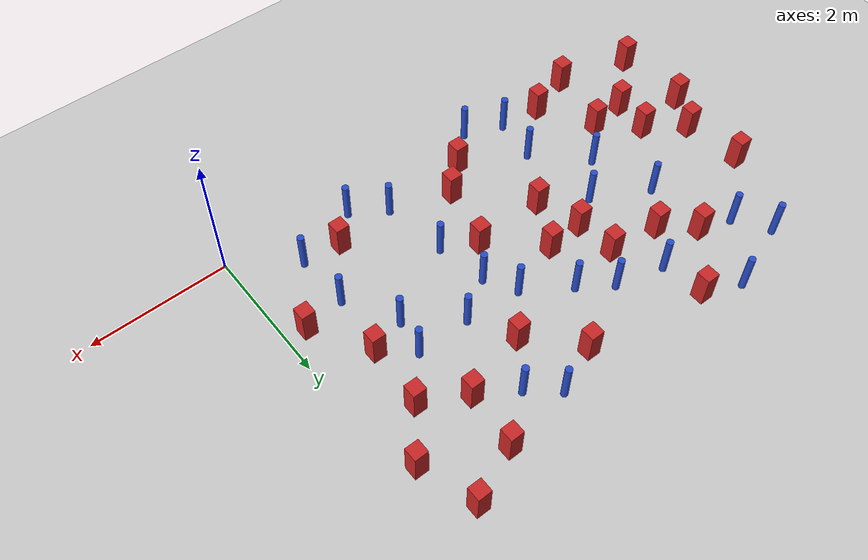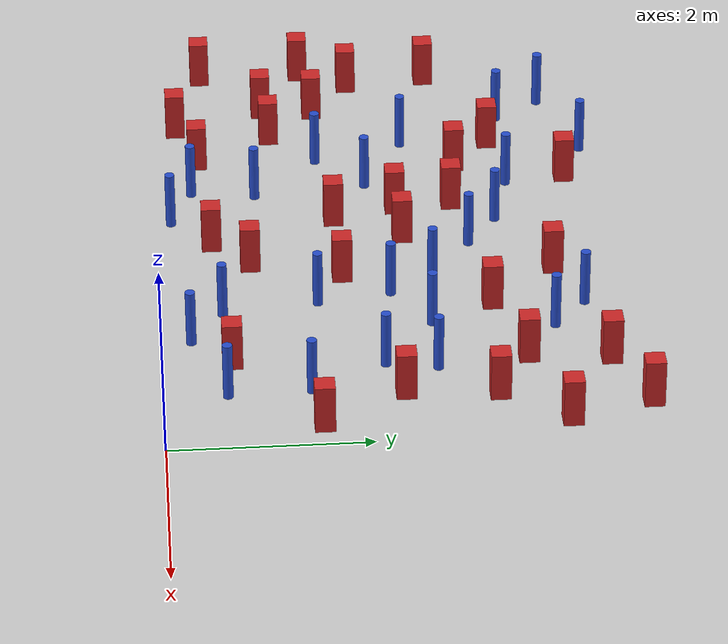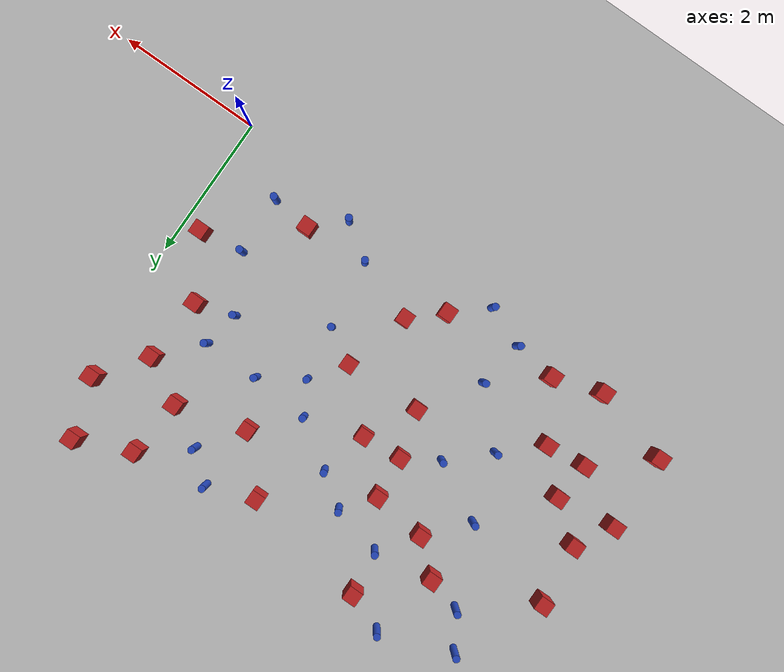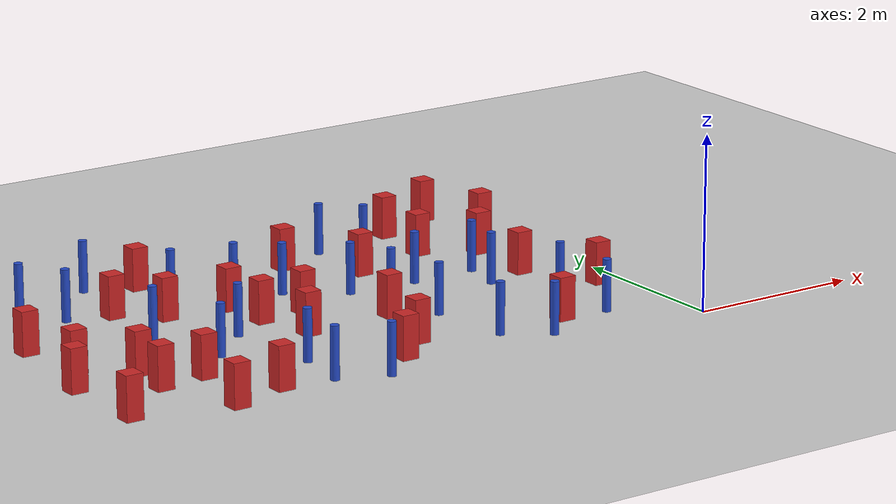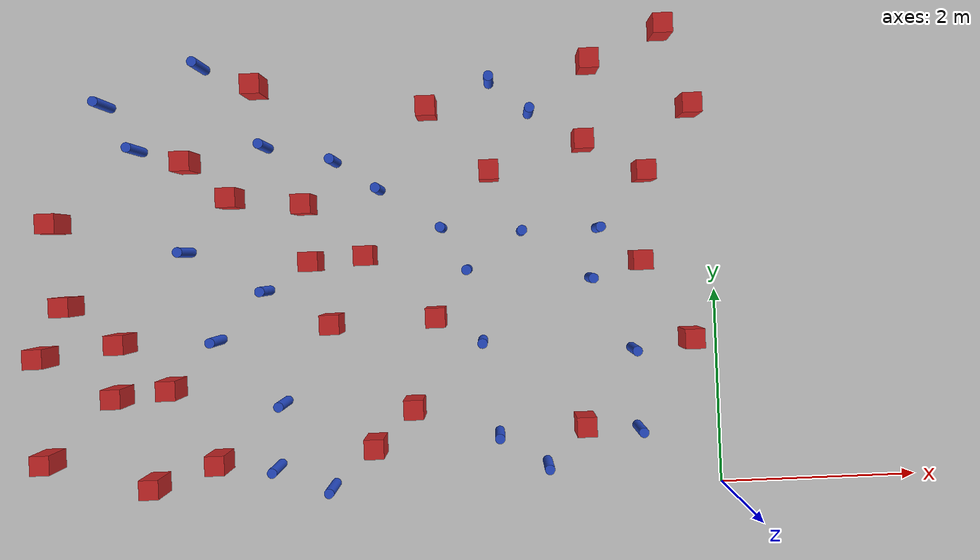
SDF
<sdf version="1.6">
 <world name="default">
  <model name="ground_plane">
   <static>1</static>
   <link name="link">
    <collision name="collision">
     <geometry><plane><normal>0 0 1</normal><size>100 100</size></plane></geometry>
     <surface><friction><ode><mu>100</mu><mu2>50</mu2></ode></friction></surface>
    </collision>
    <visual name="visual">
     <cast_shadows>0</cast_shadows>
     <geometry><plane><normal>0 0 1</normal><size>100 100</size></plane></geometry>
     <material>
      <ambient>1.0 1.0 1.0 1.0</ambient>
      <diffuse>0.8 0.8 0.8 1.0</diffuse>
      <specular>0.01 0.01 0.01 1.000000</specular>
     </material>
    </visual>
   </link>
  </model>
  <model name="pole_obstacle7">
   <static>true</static>
   <pose>-4.47552511647 1.02826375217 7.38925637345e-09 -8.47170692801e-08 1.24976765139e-08 -1.74513093014e-07</pose>
   <link name="link">
    <pose>0 0 0.3 0 -0 0</pose>
    <inertial>
     <mass>1</mass>
     <inertia><ixx>0.145833</ixx><ixy>0</ixy><ixz>0</ixz><iyy>0.145833</iyy><iyz>0</iyz><izz>0.125</izz></inertia>
    </inertial>
    <collision name="collision">
     <geometry><cylinder><radius>0.05</radius><length>.6</length></cylinder></geometry>
    </collision>
    <visual name="visual">
     <geometry><cylinder><radius>0.05</radius><length>.6</length></cylinder></geometry>
     <material>
      <script><name>Gazebo/Blue</name><uri>file://media/materials/scripts/gazebo.material</uri></script>
     </material>
    </visual>
   </link>
  </model>
  <model name="square_post_obstacle6">
   <static>true</static>
   <pose>-0.779457869081 2.34286586143 1.91545236811e-07 -7.35059704564e-06 1.12565212e-07 2.39332434364e-05</pose>
   <link name="link">
    <pose>0 0 0.25 0 -0 0</pose>
    <inertial>
     <mass>100</mass>
     <inertia>
      <ixx>0.166667</ixx>
      <ixy>0</ixy>
      <ixz>0</ixz>
      <iyy>0.166667</iyy>
      <iyz>0</iyz>
      <izz>0.166667</izz>
     </inertia>
    </inertial>
    <collision name="collision"><geometry><box><size>.2 .2 .5</size></box></geometry></collision>
    <visual name="visual">
     <geometry><box><size>.2 .2 .5</size></box></geometry>
     <material>
      <script><name>Gazebo/Red</name><uri>file://media/materials/scripts/gazebo.material</uri></script>
     </material>
    </visual>
   </link>
  </model>
  <model name="pole_obstacle15">
   <static>true</static>
   <pose>-1.29347158093 2.18036558145 7.38925637345e-09 -8.47170692799e-08 1.24976765053e-08 -1.74513093017e-07</pose>
   <link name="link">
    <pose>0 0 0.3 0 -0 0</pose>
    <inertial>
     <mass>1</mass>
     <inertia><ixx>0.145833</ixx><ixy>0</ixy><ixz>0</ixz><iyy>0.145833</iyy><iyz>0</iyz><izz>0.125</izz></inertia>
    </inertial>
    <collision name="collision">
     <geometry><cylinder><radius>0.05</radius><length>.6</length></cylinder></geometry>
    </collision>
    <visual name="visual">
     <geometry><cylinder><radius>0.05</radius><length>.6</length></cylinder></geometry>
     <material>
      <script><name>Gazebo/Blue</name><uri>file://media/materials/scripts/gazebo.material</uri></script>
     </material>
    </visual>
   </link>
  </model>
  <model name="square_post_obstacle16">
   <static>true</static>
   <pose>-3.55667821835 0.552505295943 1.91545236811e-07 -7.35059704564e-06 1.12565212e-07 2.39332434364e-05</pose>
   <link name="link">
    <pose>0 0 0.25 0 -0 0</pose>
    <inertial>
     <mass>100</mass>
     <inertia>
      <ixx>0.166667</ixx>
      <ixy>0</ixy>
      <ixz>0</ixz>
      <iyy>0.166667</iyy>
      <iyz>0</iyz>
      <izz>0.166667</izz>
     </inertia>
    </inertial>
    <collision name="collision"><geometry><box><size>.2 .2 .5</size></box></geometry></collision>
    <visual name="visual">
     <geometry><box><size>.2 .2 .5</size></box></geometry>
     <material>
      <script><name>Gazebo/Red</name><uri>file://media/materials/scripts/gazebo.material</uri></script>
     </material>
    </visual>
   </link>
  </model>
  <model name="pole_obstacle20">
   <static>true</static>
   <pose>-5.19675171322 4.49950263533 7.38925637345e-09 -8.47170692796e-08 1.24976764786e-08 -1.74513093032e-07</pose>
   <link name="link">
    <pose>0 0 0.3 0 -0 0</pose>
    <inertial>
     <mass>1</mass>
     <inertia><ixx>0.145833</ixx><ixy>0</ixy><ixz>0</ixz><iyy>0.145833</iyy><iyz>0</iyz><izz>0.125</izz></inertia>
    </inertial>
    <collision name="collision">
     <geometry><cylinder><radius>0.05</radius><length>.6</length></cylinder></geometry>
    </collision>
    <visual name="visual">
     <geometry><cylinder><radius>0.05</radius><length>.6</length></cylinder></geometry>
     <material>
      <script><name>Gazebo/Blue</name><uri>file://media/materials/scripts/gazebo.material</uri></script>
     </material>
    </visual>
   </link>
  </model>
  <model name="pole_obstacle26">
   <static>true</static>
   <pose>-5.4174638391 2.60945205125 7.38925637345e-09 -8.47170692798e-08 1.24976764937e-08 -1.74513093023e-07</pose>
   <link name="link">
    <pose>0 0 0.3 0 -0 0</pose>
    <inertial>
     <mass>1</mass>
     <inertia><ixx>0.145833</ixx><ixy>0</ixy><ixz>0</ixz><iyy>0.145833</iyy><iyz>0</iyz><izz>0.125</izz></inertia>
    </inertial>
    <collision name="collision">
     <geometry><cylinder><radius>0.05</radius><length>.6</length></cylinder></geometry>
    </collision>
    <visual name="visual">
     <geometry><cylinder><radius>0.05</radius><length>.6</length></cylinder></geometry>
     <material>
      <script><name>Gazebo/Blue</name><uri>file://media/materials/scripts/gazebo.material</uri></script>
     </material>
    </visual>
   </link>
  </model>
  <model name="pole_obstacle27">
   <static>true</static>
   <pose>-4.56566480997 0.37416328228 7.38925637345e-09 -8.47170692798e-08 1.24976765003e-08 -1.7451309302e-07</pose>
   <link name="link">
    <pose>0 0 0.3 0 -0 0</pose>
    <inertial>
     <mass>1</mass>
     <inertia><ixx>0.145833</ixx><ixy>0</ixy><ixz>0</ixz><iyy>0.145833</iyy><iyz>0</iyz><izz>0.125</izz></inertia>
    </inertial>
    <collision name="collision">
     <geometry><cylinder><radius>0.05</radius><length>.6</length></cylinder></geometry>
    </collision>
    <visual name="visual">
     <geometry><cylinder><radius>0.05</radius><length>.6</length></cylinder></geometry>
     <material>
      <script><name>Gazebo/Blue</name><uri>file://media/materials/scripts/gazebo.material</uri></script>
     </material>
    </visual>
   </link>
  </model>
  <model name="square_post_obstacle25">
   <static>true</static>
   <pose>-1.24236618436 4.39072266787 1.91545236811e-07 -7.35059704564e-06 1.12565212e-07 2.39332434364e-05</pose>
   <link name="link">
    <pose>0 0 0.25 0 -0 0</pose>
    <inertial>
     <mass>100</mass>
     <inertia>
      <ixx>0.166667</ixx>
      <ixy>0</ixy>
      <ixz>0</ixz>
      <iyy>0.166667</iyy>
      <iyz>0</iyz>
      <izz>0.166667</izz>
     </inertia>
    </inertial>
    <collision name="collision"><geometry><box><size>.2 .2 .5</size></box></geometry></collision>
    <visual name="visual">
     <geometry><box><size>.2 .2 .5</size></box></geometry>
     <material>
      <script><name>Gazebo/Red</name><uri>file://media/materials/scripts/gazebo.material</uri></script>
     </material>
    </visual>
   </link>
  </model>
  <model name="pole_obstacle32">
   <static>true</static>
   <pose>-3.87035606222 3.47852649039 7.38925637345e-09 -8.471706928e-08 1.24976765098e-08 -1.74513093016e-07</pose>
   <link name="link">
    <pose>0 0 0.3 0 -0 0</pose>
    <inertial>
     <mass>1</mass>
     <inertia><ixx>0.145833</ixx><ixy>0</ixy><ixz>0</ixz><iyy>0.145833</iyy><iyz>0</iyz><izz>0.125</izz></inertia>
    </inertial>
    <collision name="collision">
     <geometry><cylinder><radius>0.05</radius><length>.6</length></cylinder></geometry>
    </collision>
    <visual name="visual">
     <geometry><cylinder><radius>0.05</radius><length>.6</length></cylinder></geometry>
     <material>
      <script><name>Gazebo/Blue</name><uri>file://media/materials/scripts/gazebo.material</uri></script>
     </material>
    </visual>
   </link>
  </model>
  <model name="square_post_obstacle27">
   <static>true</static>
   <pose>-6.91373864437 0.527939856984 1.91545236811e-07 -7.35059704564e-06 1.12565212e-07 2.39332434364e-05</pose>
   <link name="link">
    <pose>0 0 0.25 0 -0 0</pose>
    <inertial>
     <mass>100</mass>
     <inertia>
      <ixx>0.166667</ixx>
      <ixy>0</ixy>
      <ixz>0</ixz>
      <iyy>0.166667</iyy>
      <iyz>0</iyz>
      <izz>0.166667</izz>
     </inertia>
    </inertial>
    <collision name="collision"><geometry><box><size>.2 .2 .5</size></box></geometry></collision>
    <visual name="visual">
     <geometry><box><size>.2 .2 .5</size></box></geometry>
     <material>
      <script><name>Gazebo/Red</name><uri>file://media/materials/scripts/gazebo.material</uri></script>
     </material>
    </visual>
   </link>
  </model>
  <model name="square_post_obstacle32">
   <static>true</static>
   <pose>-2.90508155995 3.98012649412 1.91545236811e-07 -7.35059704564e-06 1.12565212e-07 2.39332434364e-05</pose>
   <link name="link">
    <pose>0 0 0.25 0 -0 0</pose>
    <inertial>
     <mass>100</mass>
     <inertia>
      <ixx>0.166667</ixx>
      <ixy>0</ixy>
      <ixz>0</ixz>
      <iyy>0.166667</iyy>
      <iyz>0</iyz>
      <izz>0.166667</izz>
     </inertia>
    </inertial>
    <collision name="collision"><geometry><box><size>.2 .2 .5</size></box></geometry></collision>
    <visual name="visual">
     <geometry><box><size>.2 .2 .5</size></box></geometry>
     <material>
      <script><name>Gazebo/Red</name><uri>file://media/materials/scripts/gazebo.material</uri></script>
     </material>
    </visual>
   </link>
  </model>
  <model name="square_post_obstacle34">
   <static>true</static>
   <pose>-1.40975903618 0.686962443168 1.91545236811e-07 -7.35059704564e-06 1.12565212e-07 2.39332434364e-05</pose>
   <link name="link">
    <pose>0 0 0.25 0 -0 0</pose>
    <inertial>
     <mass>100</mass>
     <inertia>
      <ixx>0.166667</ixx>
      <ixy>0</ixy>
      <ixz>0</ixz>
      <iyy>0.166667</iyy>
      <iyz>0</iyz>
      <izz>0.166667</izz>
     </inertia>
    </inertial>
    <collision name="collision"><geometry><box><size>.2 .2 .5</size></box></geometry></collision>
    <visual name="visual">
     <geometry><box><size>.2 .2 .5</size></box></geometry>
     <material>
      <script><name>Gazebo/Red</name><uri>file://media/materials/scripts/gazebo.material</uri></script>
     </material>
    </visual>
   </link>
  </model>
  <model name="square_post_obstacle37">
   <static>true</static>
   <pose>-6.17593598702 1.16178303904 1.91545236811e-07 -7.35059704564e-06 1.12565212e-07 2.39332434364e-05</pose>
   <link name="link">
    <pose>0 0 0.25 0 -0 0</pose>
    <inertial>
     <mass>100</mass>
     <inertia>
      <ixx>0.166667</ixx>
      <ixy>0</ixy>
      <ixz>0</ixz>
      <iyy>0.166667</iyy>
      <iyz>0</iyz>
      <izz>0.166667</izz>
     </inertia>
    </inertial>
    <collision name="collision"><geometry><box><size>.2 .2 .5</size></box></geometry></collision>
    <visual name="visual">
     <geometry><box><size>.2 .2 .5</size></box></geometry>
     <material>
      <script><name>Gazebo/Red</name><uri>file://media/materials/scripts/gazebo.material</uri></script>
     </material>
    </visual>
   </link>
  </model>
  <model name="pole_obstacle50">
   <static>true</static>
   <pose>-3.42618506502 3.17109421138 7.38925637345e-09 -8.47170692798e-08 1.24976764939e-08 -1.74513093025e-07</pose>
   <link name="link">
    <pose>0 0 0.3 0 -0 0</pose>
    <inertial>
     <mass>1</mass>
     <inertia><ixx>0.145833</ixx><ixy>0</ixy><ixz>0</ixz><iyy>0.145833</iyy><iyz>0</iyz><izz>0.125</izz></inertia>
    </inertial>
    <collision name="collision">
     <geometry><cylinder><radius>0.05</radius><length>.6</length></cylinder></geometry>
    </collision>
    <visual name="visual">
     <geometry><cylinder><radius>0.05</radius><length>.6</length></cylinder></geometry>
     <material>
      <script><name>Gazebo/Blue</name><uri>file://media/materials/scripts/gazebo.material</uri></script>
     </material>
    </visual>
   </link>
  </model>
  <model name="pole_obstacle53">
   <static>true</static>
   <pose>-0.885758236064 1.43796768044 7.38925637345e-09 -8.47170692799e-08 1.24976765033e-08 -1.7451309302e-07</pose>
   <link name="link">
    <pose>0 0 0.3 0 -0 0</pose>
    <inertial>
     <mass>1</mass>
     <inertia><ixx>0.145833</ixx><ixy>0</ixy><ixz>0</ixz><iyy>0.145833</iyy><iyz>0</iyz><izz>0.125</izz></inertia>
    </inertial>
    <collision name="collision">
     <geometry><cylinder><radius>0.05</radius><length>.6</length></cylinder></geometry>
    </collision>
    <visual name="visual">
     <geometry><cylinder><radius>0.05</radius><length>.6</length></cylinder></geometry>
     <material>
      <script><name>Gazebo/Blue</name><uri>file://media/materials/scripts/gazebo.material</uri></script>
     </material>
    </visual>
   </link>
  </model>
  <model name="square_post_obstacle43">
   <static>true</static>
   <pose>-6.12449215025 1.70416959982 1.91545236811e-07 -7.35059704564e-06 1.12565212e-07 2.39332434364e-05</pose>
   <link name="link">
    <pose>0 0 0.25 0 -0 0</pose>
    <inertial>
     <mass>100</mass>
     <inertia>
      <ixx>0.166667</ixx>
      <ixy>0</ixy>
      <ixz>0</ixz>
      <iyy>0.166667</iyy>
      <iyz>0</iyz>
      <izz>0.166667</izz>
     </inertia>
    </inertial>
    <collision name="collision"><geometry><box><size>.2 .2 .5</size></box></geometry></collision>
    <visual name="visual">
     <geometry><box><size>.2 .2 .5</size></box></geometry>
     <material>
      <script><name>Gazebo/Red</name><uri>file://media/materials/scripts/gazebo.material</uri></script>
     </material>
    </visual>
   </link>
  </model>
  <model name="square_post_obstacle46">
   <static>true</static>
   <pose>-3.95458299181 1.81921405457 1.91545236811e-07 -7.35059704564e-06 1.12565212e-07 2.39332434364e-05</pose>
   <link name="link">
    <pose>0 0 0.25 0 -0 0</pose>
    <inertial>
     <mass>100</mass>
     <inertia>
      <ixx>0.166667</ixx>
      <ixy>0</ixy>
      <ixz>0</ixz>
      <iyy>0.166667</iyy>
      <iyz>0</iyz>
      <izz>0.166667</izz>
     </inertia>
    </inertial>
    <collision name="collision"><geometry><box><size>.2 .2 .5</size></box></geometry></collision>
    <visual name="visual">
     <geometry><box><size>.2 .2 .5</size></box></geometry>
     <material>
      <script><name>Gazebo/Red</name><uri>file://media/materials/scripts/gazebo.material</uri></script>
     </material>
    </visual>
   </link>
  </model>
  <model name="pole_obstacle62">
   <static>true</static>
   <pose>-1.86199265198 3.90369243995 7.38925637345e-09 -8.47170692799e-08 1.24976765053e-08 -1.74513093017e-07</pose>
   <link name="link">
    <pose>0 0 0.3 0 -0 0</pose>
    <inertial>
     <mass>1</mass>
     <inertia><ixx>0.145833</ixx><ixy>0</ixy><ixz>0</ixz><iyy>0.145833</iyy><iyz>0</iyz><izz>0.125</izz></inertia>
    </inertial>
    <collision name="collision">
     <geometry><cylinder><radius>0.05</radius><length>.6</length></cylinder></geometry>
    </collision>
    <visual name="visual">
     <geometry><cylinder><radius>0.05</radius><length>.6</length></cylinder></geometry>
     <material>
      <script><name>Gazebo/Blue</name><uri>file://media/materials/scripts/gazebo.material</uri></script>
     </material>
    </visual>
   </link>
  </model>
  <model name="square_post_obstacle50">
   <static>true</static>
   <pose>-6.65897586266 2.10480446351 1.91545236811e-07 -7.35059704564e-06 1.12565212e-07 2.39332434364e-05</pose>
   <link name="link">
    <pose>0 0 0.25 0 -0 0</pose>
    <inertial>
     <mass>100</mass>
     <inertia>
      <ixx>0.166667</ixx>
      <ixy>0</ixy>
      <ixz>0</ixz>
      <iyy>0.166667</iyy>
      <iyz>0</iyz>
      <izz>0.166667</izz>
     </inertia>
    </inertial>
    <collision name="collision"><geometry><box><size>.2 .2 .5</size></box></geometry></collision>
    <visual name="visual">
     <geometry><box><size>.2 .2 .5</size></box></geometry>
     <material>
      <script><name>Gazebo/Red</name><uri>file://media/materials/scripts/gazebo.material</uri></script>
     </material>
    </visual>
   </link>
  </model>
  <model name="square_post_obstacle53">
   <static>true</static>
   <pose>-5.83012517689 0.239624018968 1.91545236811e-07 -7.35059704564e-06 1.12565212e-07 2.39332434364e-05</pose>
   <link name="link">
    <pose>0 0 0.25 0 -0 0</pose>
    <inertial>
     <mass>100</mass>
     <inertia>
      <ixx>0.166667</ixx>
      <ixy>0</ixy>
      <ixz>0</ixz>
      <iyy>0.166667</iyy>
      <iyz>0</iyz>
      <izz>0.166667</izz>
     </inertia>
    </inertial>
    <collision name="collision"><geometry><box><size>.2 .2 .5</size></box></geometry></collision>
    <visual name="visual">
     <geometry><box><size>.2 .2 .5</size></box></geometry>
     <material>
      <script><name>Gazebo/Red</name><uri>file://media/materials/scripts/gazebo.material</uri></script>
     </material>
    </visual>
   </link>
  </model>
  <model name="square_post_obstacle54">
   <static>true</static>
   <pose>-5.62134615115 1.22285496758 1.91545236811e-07 -7.35059704564e-06 1.12565212e-07 2.39332434364e-05</pose>
   <link name="link">
    <pose>0 0 0.25 0 -0 0</pose>
    <inertial>
     <mass>100</mass>
     <inertia>
      <ixx>0.166667</ixx>
      <ixy>0</ixy>
      <ixz>0</ixz>
      <iyy>0.166667</iyy>
      <iyz>0</iyz>
      <izz>0.166667</izz>
     </inertia>
    </inertial>
    <collision name="collision"><geometry><box><size>.2 .2 .5</size></box></geometry></collision>
    <visual name="visual">
     <geometry><box><size>.2 .2 .5</size></box></geometry>
     <material>
      <script><name>Gazebo/Red</name><uri>file://media/materials/scripts/gazebo.material</uri></script>
     </material>
    </visual>
   </link>
  </model>
  <model name="square_post_obstacle64">
   <static>true</static>
   <pose>-4.14286515511 2.46294975578 1.91545236811e-07 -7.35059704564e-06 1.12565212e-07 2.39332434364e-05</pose>
   <link name="link">
    <pose>0 0 0.25 0 -0 0</pose>
    <inertial>
     <mass>100</mass>
     <inertia>
      <ixx>0.166667</ixx>
      <ixy>0</ixy>
      <ixz>0</ixz>
      <iyy>0.166667</iyy>
      <iyz>0</iyz>
      <izz>0.166667</izz>
     </inertia>
    </inertial>
    <collision name="collision"><geometry><box><size>.2 .2 .5</size></box></geometry></collision>
    <visual name="visual">
     <geometry><box><size>.2 .2 .5</size></box></geometry>
     <material>
      <script><name>Gazebo/Red</name><uri>file://media/materials/scripts/gazebo.material</uri></script>
     </material>
    </visual>
   </link>
  </model>
  <model name="pole_obstacle80">
   <static>true</static>
   <pose>-1.80364807686 0.295900043256 7.38925637345e-09 -8.47170692799e-08 1.2497676507e-08 -1.74513093018e-07</pose>
   <link name="link">
    <pose>0 0 0.3 0 -0 0</pose>
    <inertial>
     <mass>1</mass>
     <inertia><ixx>0.145833</ixx><ixy>0</ixy><ixz>0</ixz><iyy>0.145833</iyy><iyz>0</iyz><izz>0.125</izz></inertia>
    </inertial>
    <collision name="collision">
     <geometry><cylinder><radius>0.05</radius><length>.6</length></cylinder></geometry>
    </collision>
    <visual name="visual">
     <geometry><cylinder><radius>0.05</radius><length>.6</length></cylinder></geometry>
     <material>
      <script><name>Gazebo/Blue</name><uri>file://media/materials/scripts/gazebo.material</uri></script>
     </material>
    </visual>
   </link>
  </model>
  <model name="square_post_obstacle78">
   <static>true</static>
   <pose>-4.94384376058 3.1409705075 1.91545236811e-07 -7.35059704564e-06 1.12565212e-07 2.39332434364e-05</pose>
   <link name="link">
    <pose>0 0 0.25 0 -0 0</pose>
    <inertial>
     <mass>100</mass>
     <inertia>
      <ixx>0.166667</ixx>
      <ixy>0</ixy>
      <ixz>0</ixz>
      <iyy>0.166667</iyy>
      <iyz>0</iyz>
      <izz>0.166667</izz>
     </inertia>
    </inertial>
    <collision name="collision"><geometry><box><size>.2 .2 .5</size></box></geometry></collision>
    <visual name="visual">
     <geometry><box><size>.2 .2 .5</size></box></geometry>
     <material>
      <script><name>Gazebo/Red</name><uri>file://media/materials/scripts/gazebo.material</uri></script>
     </material>
    </visual>
   </link>
  </model>
  <model name="pole_obstacle103">
   <static>true</static>
   <pose>-1.98371619093 2.68836493172 7.38925637345e-09 -8.471706928e-08 1.24976765192e-08 -1.7451309301e-07</pose>
   <link name="link">
    <pose>0 0 0.3 0 -0 0</pose>
    <inertial>
     <mass>1</mass>
     <inertia><ixx>0.145833</ixx><ixy>0</ixy><ixz>0</ixz><iyy>0.145833</iyy><iyz>0</iyz><izz>0.125</izz></inertia>
    </inertial>
    <collision name="collision">
     <geometry><cylinder><radius>0.05</radius><length>.6</length></cylinder></geometry>
    </collision>
    <visual name="visual">
     <geometry><cylinder><radius>0.05</radius><length>.6</length></cylinder></geometry>
     <material>
      <script><name>Gazebo/Blue</name><uri>file://media/materials/scripts/gazebo.material</uri></script>
     </material>
    </visual>
   </link>
  </model>
  <model name="square_post_obstacle101">
   <static>true</static>
   <pose>-1.32400818551 3.5850652676 1.91545236811e-07 -7.35059704564e-06 1.12565212e-07 2.39332434364e-05</pose>
   <link name="link">
    <pose>0 0 0.25 0 -0 0</pose>
    <inertial>
     <mass>100</mass>
     <inertia>
      <ixx>0.166667</ixx>
      <ixy>0</ixy>
      <ixz>0</ixz>
      <iyy>0.166667</iyy>
      <iyz>0</iyz>
      <izz>0.166667</izz>
     </inertia>
    </inertial>
    <collision name="collision"><geometry><box><size>.2 .2 .5</size></box></geometry></collision>
    <visual name="visual">
     <geometry><box><size>.2 .2 .5</size></box></geometry>
     <material>
      <script><name>Gazebo/Red</name><uri>file://media/materials/scripts/gazebo.material</uri></script>
     </material>
    </visual>
   </link>
  </model>
  <model name="square_post_obstacle109">
   <static>true</static>
   <pose>-2.2924513308 3.31349529404 1.91545236811e-07 -7.35059704564e-06 1.12565212e-07 2.39332434364e-05</pose>
   <link name="link">
    <pose>0 0 0.25 0 -0 0</pose>
    <inertial>
     <mass>100</mass>
     <inertia>
      <ixx>0.166667</ixx>
      <ixy>0</ixy>
      <ixz>0</ixz>
      <iyy>0.166667</iyy>
      <iyz>0</iyz>
      <izz>0.166667</izz>
     </inertia>
    </inertial>
    <collision name="collision"><geometry><box><size>.2 .2 .5</size></box></geometry></collision>
    <visual name="visual">
     <geometry><box><size>.2 .2 .5</size></box></geometry>
     <material>
      <script><name>Gazebo/Red</name><uri>file://media/materials/scripts/gazebo.material</uri></script>
     </material>
    </visual>
   </link>
  </model>
  <model name="square_post_obstacle117">
   <static>true</static>
   <pose>-4.65355472396 4.2718973122 1.91545236811e-07 -7.35059704564e-06 1.12565212e-07 2.39332434364e-05</pose>
   <link name="link">
    <pose>0 0 0.25 0 -0 0</pose>
    <inertial>
     <mass>100</mass>
     <inertia>
      <ixx>0.166667</ixx>
      <ixy>0</ixy>
      <ixz>0</ixz>
      <iyy>0.166667</iyy>
      <iyz>0</iyz>
      <izz>0.166667</izz>
     </inertia>
    </inertial>
    <collision name="collision"><geometry><box><size>.2 .2 .5</size></box></geometry></collision>
    <visual name="visual">
     <geometry><box><size>.2 .2 .5</size></box></geometry>
     <material>
      <script><name>Gazebo/Red</name><uri>file://media/materials/scripts/gazebo.material</uri></script>
     </material>
    </visual>
   </link>
  </model>
  <model name="square_post_obstacle119">
   <static>true</static>
   <pose>-0.225609458666 3.90076886565 1.91545236811e-07 -7.35059704564e-06 1.12565212e-07 2.39332434364e-05</pose>
   <link name="link">
    <pose>0 0 0.25 0 -0 0</pose>
    <inertial>
     <mass>100</mass>
     <inertia>
      <ixx>0.166667</ixx>
      <ixy>0</ixy>
      <ixz>0</ixz>
      <iyy>0.166667</iyy>
      <iyz>0</iyz>
      <izz>0.166667</izz>
     </inertia>
    </inertial>
    <collision name="collision"><geometry><box><size>.2 .2 .5</size></box></geometry></collision>
    <visual name="visual">
     <geometry><box><size>.2 .2 .5</size></box></geometry>
     <material>
      <script><name>Gazebo/Red</name><uri>file://media/materials/scripts/gazebo.material</uri></script>
     </material>
    </visual>
   </link>
  </model>
  <model name="pole_obstacle122">
   <static>true</static>
   <pose>-4.61668513418 2.18182412368 7.38925637345e-09 -8.47170692798e-08 1.24976764937e-08 -1.74513093023e-07</pose>
   <link name="link">
    <pose>0 0 0.3 0 -0 0</pose>
    <inertial>
     <mass>1</mass>
     <inertia><ixx>0.145833</ixx><ixy>0</ixy><ixz>0</ixz><iyy>0.145833</iyy><iyz>0</iyz><izz>0.125</izz></inertia>
    </inertial>
    <collision name="collision">
     <geometry><cylinder><radius>0.05</radius><length>.6</length></cylinder></geometry>
    </collision>
    <visual name="visual">
     <geometry><cylinder><radius>0.05</radius><length>.6</length></cylinder></geometry>
     <material>
      <script><name>Gazebo/Blue</name><uri>file://media/materials/scripts/gazebo.material</uri></script>
     </material>
    </visual>
   </link>
  </model>
  <model name="square_post_obstacle123">
   <static>true</static>
   <pose>-0.291770926339 1.52798730163 1.91545236811e-07 -7.35059704564e-06 1.12565212e-07 2.39332434364e-05</pose>
   <link name="link">
    <pose>0 0 0.25 0 -0 0</pose>
    <inertial>
     <mass>100</mass>
     <inertia>
      <ixx>0.166667</ixx>
      <ixy>0</ixy>
      <ixz>0</ixz>
      <iyy>0.166667</iyy>
      <iyz>0</iyz>
      <izz>0.166667</izz>
     </inertia>
    </inertial>
    <collision name="collision"><geometry><box><size>.2 .2 .5</size></box></geometry></collision>
    <visual name="visual">
     <geometry><box><size>.2 .2 .5</size></box></geometry>
     <material>
      <script><name>Gazebo/Red</name><uri>file://media/materials/scripts/gazebo.material</uri></script>
     </material>
    </visual>
   </link>
  </model>
  <model name="pole_obstacle131">
   <static>true</static>
   <pose>-2.42211159376 1.57659329963 7.38925637345e-09 -8.471706928e-08 1.24976765152e-08 -1.74513093012e-07</pose>
   <link name="link">
    <pose>0 0 0.3 0 -0 0</pose>
    <inertial>
     <mass>1</mass>
     <inertia><ixx>0.145833</ixx><ixy>0</ixy><ixz>0</ixz><iyy>0.145833</iyy><iyz>0</iyz><izz>0.125</izz></inertia>
    </inertial>
    <collision name="collision">
     <geometry><cylinder><radius>0.05</radius><length>.6</length></cylinder></geometry>
    </collision>
    <visual name="visual">
     <geometry><cylinder><radius>0.05</radius><length>.6</length></cylinder></geometry>
     <material>
      <script><name>Gazebo/Blue</name><uri>file://media/materials/scripts/gazebo.material</uri></script>
     </material>
    </visual>
   </link>
  </model>
  <model name="pole_obstacle135">
   <static>true</static>
   <pose>-5.8815861731 3.67293108532 7.38925637345e-09 -8.47170692798e-08 1.24976764937e-08 -1.74513093023e-07</pose>
   <link name="link">
    <pose>0 0 0.3 0 -0 0</pose>
    <inertial>
     <mass>1</mass>
     <inertia><ixx>0.145833</ixx><ixy>0</ixy><ixz>0</ixz><iyy>0.145833</iyy><iyz>0</iyz><izz>0.125</izz></inertia>
    </inertial>
    <collision name="collision">
     <geometry><cylinder><radius>0.05</radius><length>.6</length></cylinder></geometry>
    </collision>
    <visual name="visual">
     <geometry><cylinder><radius>0.05</radius><length>.6</length></cylinder></geometry>
     <material>
      <script><name>Gazebo/Blue</name><uri>file://media/materials/scripts/gazebo.material</uri></script>
     </material>
    </visual>
   </link>
  </model>
  <model name="square_post_obstacle134">
   <static>true</static>
   <pose>-2.88907440777 1.845653099 1.91545236811e-07 -7.35059704564e-06 1.12565212e-07 2.39332434364e-05</pose>
   <link name="link">
    <pose>0 0 0.25 0 -0 0</pose>
    <inertial>
     <mass>100</mass>
     <inertia>
      <ixx>0.166667</ixx>
      <ixy>0</ixy>
      <ixz>0</ixz>
      <iyy>0.166667</iyy>
      <iyz>0</iyz>
      <izz>0.166667</izz>
     </inertia>
    </inertial>
    <collision name="collision"><geometry><box><size>.2 .2 .5</size></box></geometry></collision>
    <visual name="visual">
     <geometry><box><size>.2 .2 .5</size></box></geometry>
     <material>
      <script><name>Gazebo/Red</name><uri>file://media/materials/scripts/gazebo.material</uri></script>
     </material>
    </visual>
   </link>
  </model>
  <model name="pole_obstacle139">
   <static>true</static>
   <pose>-6.19499582836 4.14510025263 7.38925637345e-09 -8.47170692796e-08 1.24976764786e-08 -1.74513093032e-07</pose>
   <link name="link">
    <pose>0 0 0.3 0 -0 0</pose>
    <inertial>
     <mass>1</mass>
     <inertia><ixx>0.145833</ixx><ixy>0</ixy><ixz>0</ixz><iyy>0.145833</iyy><iyz>0</iyz><izz>0.125</izz></inertia>
    </inertial>
    <collision name="collision">
     <geometry><cylinder><radius>0.05</radius><length>.6</length></cylinder></geometry>
    </collision>
    <visual name="visual">
     <geometry><cylinder><radius>0.05</radius><length>.6</length></cylinder></geometry>
     <material>
      <script><name>Gazebo/Blue</name><uri>file://media/materials/scripts/gazebo.material</uri></script>
     </material>
    </visual>
   </link>
  </model>
  <model name="pole_obstacle142">
   <static>true</static>
   <pose>-2.79855610994 2.75295431558 7.38925637345e-09 -8.47170692798e-08 1.24976764939e-08 -1.74513093025e-07</pose>
   <link name="link">
    <pose>0 0 0.3 0 -0 0</pose>
    <inertial>
     <mass>1</mass>
     <inertia><ixx>0.145833</ixx><ixy>0</ixy><ixz>0</ixz><iyy>0.145833</iyy><iyz>0</iyz><izz>0.125</izz></inertia>
    </inertial>
    <collision name="collision">
     <geometry><cylinder><radius>0.05</radius><length>.6</length></cylinder></geometry>
    </collision>
    <visual name="visual">
     <geometry><cylinder><radius>0.05</radius><length>.6</length></cylinder></geometry>
     <material>
      <script><name>Gazebo/Blue</name><uri>file://media/materials/scripts/gazebo.material</uri></script>
     </material>
    </visual>
   </link>
  </model>
  <model name="pole_obstacle145">
   <static>true</static>
   <pose>-2.28641028033 0.621699367285 7.38925637345e-09 -8.471706928e-08 1.24976765177e-08 -1.74513093012e-07</pose>
   <link name="link">
    <pose>0 0 0.3 0 -0 0</pose>
    <inertial>
     <mass>1</mass>
     <inertia><ixx>0.145833</ixx><ixy>0</ixy><ixz>0</ixz><iyy>0.145833</iyy><iyz>0</iyz><izz>0.125</izz></inertia>
    </inertial>
    <collision name="collision">
     <geometry><cylinder><radius>0.05</radius><length>.6</length></cylinder></geometry>
    </collision>
    <visual name="visual">
     <geometry><cylinder><radius>0.05</radius><length>.6</length></cylinder></geometry>
     <material>
      <script><name>Gazebo/Blue</name><uri>file://media/materials/scripts/gazebo.material</uri></script>
     </material>
    </visual>
   </link>
  </model>
  <model name="square_post_obstacle141">
   <static>true</static>
   <pose>-5.38849247671 3.52563923357 1.91545236811e-07 -7.35059704564e-06 1.12565212e-07 2.39332434364e-05</pose>
   <link name="link">
    <pose>0 0 0.25 0 -0 0</pose>
    <inertial>
     <mass>100</mass>
     <inertia>
      <ixx>0.166667</ixx>
      <ixy>0</ixy>
      <ixz>0</ixz>
      <iyy>0.166667</iyy>
      <iyz>0</iyz>
      <izz>0.166667</izz>
     </inertia>
    </inertial>
    <collision name="collision"><geometry><box><size>.2 .2 .5</size></box></geometry></collision>
    <visual name="visual">
     <geometry><box><size>.2 .2 .5</size></box></geometry>
     <material>
      <script><name>Gazebo/Red</name><uri>file://media/materials/scripts/gazebo.material</uri></script>
     </material>
    </visual>
   </link>
  </model>
  <model name="square_post_obstacle153">
   <static>true</static>
   <pose>-0.487288803444 4.71145056812 1.91545236811e-07 -7.35059704564e-06 1.12565212e-07 2.39332434364e-05</pose>
   <link name="link">
    <pose>0 0 0.25 0 -0 0</pose>
    <inertial>
     <mass>100</mass>
     <inertia>
      <ixx>0.166667</ixx>
      <ixy>0</ixy>
      <ixz>0</ixz>
      <iyy>0.166667</iyy>
      <iyz>0</iyz>
      <izz>0.166667</izz>
     </inertia>
    </inertial>
    <collision name="collision"><geometry><box><size>.2 .2 .5</size></box></geometry></collision>
    <visual name="visual">
     <geometry><box><size>.2 .2 .5</size></box></geometry>
     <material>
      <script><name>Gazebo/Red</name><uri>file://media/materials/scripts/gazebo.material</uri></script>
     </material>
    </visual>
   </link>
  </model>
  <model name="square_post_obstacle157">
   <static>true</static>
   <pose>-5.16105095088 0.453593242047 1.91545236811e-07 -7.35059704564e-06 1.12565212e-07 2.39332434364e-05</pose>
   <link name="link">
    <pose>0 0 0.25 0 -0 0</pose>
    <inertial>
     <mass>100</mass>
     <inertia>
      <ixx>0.166667</ixx>
      <ixy>0</ixy>
      <ixz>0</ixz>
      <iyy>0.166667</iyy>
      <iyz>0</iyz>
      <izz>0.166667</izz>
     </inertia>
    </inertial>
    <collision name="collision"><geometry><box><size>.2 .2 .5</size></box></geometry></collision>
    <visual name="visual">
     <geometry><box><size>.2 .2 .5</size></box></geometry>
     <material>
      <script><name>Gazebo/Red</name><uri>file://media/materials/scripts/gazebo.material</uri></script>
     </material>
    </visual>
   </link>
  </model>
  <model name="square_post_obstacle160">
   <static>true</static>
   <pose>-3.58625906215 2.50057988181 1.91545236811e-07 -7.35059704564e-06 1.12565212e-07 2.39332434364e-05</pose>
   <link name="link">
    <pose>0 0 0.25 0 -0 0</pose>
    <inertial>
     <mass>100</mass>
     <inertia>
      <ixx>0.166667</ixx>
      <ixy>0</ixy>
      <ixz>0</ixz>
      <iyy>0.166667</iyy>
      <iyz>0</iyz>
      <izz>0.166667</izz>
     </inertia>
    </inertial>
    <collision name="collision"><geometry><box><size>.2 .2 .5</size></box></geometry></collision>
    <visual name="visual">
     <geometry><box><size>.2 .2 .5</size></box></geometry>
     <material>
      <script><name>Gazebo/Red</name><uri>file://media/materials/scripts/gazebo.material</uri></script>
     </material>
    </visual>
   </link>
  </model>
  <model name="square_post_obstacle161">
   <static>true</static>
   <pose>-0.710990339478 3.2475421613 1.91545236811e-07 -7.35059704564e-06 1.12565212e-07 2.39332434364e-05</pose>
   <link name="link">
    <pose>0 0 0.25 0 -0 0</pose>
    <inertial>
     <mass>100</mass>
     <inertia>
      <ixx>0.166667</ixx>
      <ixy>0</ixy>
      <ixz>0</ixz>
      <iyy>0.166667</iyy>
      <iyz>0</iyz>
      <izz>0.166667</izz>
     </inertia>
    </inertial>
    <collision name="collision"><geometry><box><size>.2 .2 .5</size></box></geometry></collision>
    <visual name="visual">
     <geometry><box><size>.2 .2 .5</size></box></geometry>
     <material>
      <script><name>Gazebo/Red</name><uri>file://media/materials/scripts/gazebo.material</uri></script>
     </material>
    </visual>
   </link>
  </model>
  <model name="pole_obstacle166">
   <static>true</static>
   <pose>-0.855038904201 0.625272202866 7.38925637345e-09 -8.47170692799e-08 1.24976765008e-08 -1.7451309302e-07</pose>
   <link name="link">
    <pose>0 0 0.3 0 -0 0</pose>
    <inertial>
     <mass>1</mass>
     <inertia><ixx>0.145833</ixx><ixy>0</ixy><ixz>0</ixz><iyy>0.145833</iyy><iyz>0</iyz><izz>0.125</izz></inertia>
    </inertial>
    <collision name="collision">
     <geometry><cylinder><radius>0.05</radius><length>.6</length></cylinder></geometry>
    </collision>
    <visual name="visual">
     <geometry><cylinder><radius>0.05</radius><length>.6</length></cylinder></geometry>
     <material>
      <script><name>Gazebo/Blue</name><uri>file://media/materials/scripts/gazebo.material</uri></script>
     </material>
    </visual>
   </link>
  </model>
  <model name="square_post_obstacle169">
   <static>true</static>
   <pose>-6.94488833716 1.59530502121 1.91545236811e-07 -7.35059704564e-06 1.12565212e-07 2.39332434364e-05</pose>
   <link name="link">
    <pose>0 0 0.25 0 -0 0</pose>
    <inertial>
     <mass>100</mass>
     <inertia>
      <ixx>0.166667</ixx>
      <ixy>0</ixy>
      <ixz>0</ixz>
      <iyy>0.166667</iyy>
      <iyz>0</iyz>
      <izz>0.166667</izz>
     </inertia>
    </inertial>
    <collision name="collision"><geometry><box><size>.2 .2 .5</size></box></geometry></collision>
    <visual name="visual">
     <geometry><box><size>.2 .2 .5</size></box></geometry>
     <material>
      <script><name>Gazebo/Red</name><uri>file://media/materials/scripts/gazebo.material</uri></script>
     </material>
    </visual>
   </link>
  </model>
  <model name="pole_obstacle170">
   <static>true</static>
   <pose>-4.57156047935 3.65676696751 7.38925637345e-09 -8.47170692798e-08 1.24976764937e-08 -1.74513093023e-07</pose>
   <link name="link">
    <pose>0 0 0.3 0 -0 0</pose>
    <inertial>
     <mass>1</mass>
     <inertia><ixx>0.145833</ixx><ixy>0</ixy><ixz>0</ixz><iyy>0.145833</iyy><iyz>0</iyz><izz>0.125</izz></inertia>
    </inertial>
    <collision name="collision">
     <geometry><cylinder><radius>0.05</radius><length>.6</length></cylinder></geometry>
    </collision>
    <visual name="visual">
     <geometry><cylinder><radius>0.05</radius><length>.6</length></cylinder></geometry>
     <material>
      <script><name>Gazebo/Blue</name><uri>file://media/materials/scripts/gazebo.material</uri></script>
     </material>
    </visual>
   </link>
  </model>
  <model name="pole_obstacle175">
   <static>true</static>
   <pose>-2.55251416154 2.31577916686 7.38925637345e-09 -8.47170692798e-08 1.24976764939e-08 -1.74513093025e-07</pose>
   <link name="link">
    <pose>0 0 0.3 0 -0 0</pose>
    <inertial>
     <mass>1</mass>
     <inertia><ixx>0.145833</ixx><ixy>0</ixy><ixz>0</ixz><iyy>0.145833</iyy><iyz>0</iyz><izz>0.125</izz></inertia>
    </inertial>
    <collision name="collision">
     <geometry><cylinder><radius>0.05</radius><length>.6</length></cylinder></geometry>
    </collision>
    <visual name="visual">
     <geometry><cylinder><radius>0.05</radius><length>.6</length></cylinder></geometry>
     <material>
      <script><name>Gazebo/Blue</name><uri>file://media/materials/scripts/gazebo.material</uri></script>
     </material>
    </visual>
   </link>
  </model>
  <model name="pole_obstacle177">
   <static>true</static>
   <pose>-1.20151487862 2.68931459511 7.38925637345e-09 -8.47170692799e-08 1.24976765053e-08 -1.74513093017e-07</pose>
   <link name="link">
    <pose>0 0 0.3 0 -0 0</pose>
    <inertial>
     <mass>1</mass>
     <inertia><ixx>0.145833</ixx><ixy>0</ixy><ixz>0</ixz><iyy>0.145833</iyy><iyz>0</iyz><izz>0.125</izz></inertia>
    </inertial>
    <collision name="collision">
     <geometry><cylinder><radius>0.05</radius><length>.6</length></cylinder></geometry>
    </collision>
    <visual name="visual">
     <geometry><cylinder><radius>0.05</radius><length>.6</length></cylinder></geometry>
     <material>
      <script><name>Gazebo/Blue</name><uri>file://media/materials/scripts/gazebo.material</uri></script>
     </material>
    </visual>
   </link>
  </model>
  <model name="square_post_obstacle179">
   <static>true</static>
   <pose>-6.76332646841 2.95312298082 1.91545236811e-07 -7.35059704564e-06 1.12565212e-07 2.39332434364e-05</pose>
   <link name="link">
    <pose>0 0 0.25 0 -0 0</pose>
    <inertial>
     <mass>100</mass>
     <inertia>
      <ixx>0.166667</ixx>
      <ixy>0</ixy>
      <ixz>0</ixz>
      <iyy>0.166667</iyy>
      <iyz>0</iyz>
      <izz>0.166667</izz>
     </inertia>
    </inertial>
    <collision name="collision"><geometry><box><size>.2 .2 .5</size></box></geometry></collision>
    <visual name="visual">
     <geometry><box><size>.2 .2 .5</size></box></geometry>
     <material>
      <script><name>Gazebo/Red</name><uri>file://media/materials/scripts/gazebo.material</uri></script>
     </material>
    </visual>
   </link>
  </model>
  <model name="pole_obstacle186">
   <static>true</static>
   <pose>-2.25628912971 4.23574784719 7.38925637345e-09 -8.47170692798e-08 1.24976765033e-08 -1.74513093019e-07</pose>
   <link name="link">
    <pose>0 0 0.3 0 -0 0</pose>
    <inertial>
     <mass>1</mass>
     <inertia><ixx>0.145833</ixx><ixy>0</ixy><ixz>0</ixz><iyy>0.145833</iyy><iyz>0</iyz><izz>0.125</izz></inertia>
    </inertial>
    <collision name="collision">
     <geometry><cylinder><radius>0.05</radius><length>.6</length></cylinder></geometry>
    </collision>
    <visual name="visual">
     <geometry><cylinder><radius>0.05</radius><length>.6</length></cylinder></geometry>
     <material>
      <script><name>Gazebo/Blue</name><uri>file://media/materials/scripts/gazebo.material</uri></script>
     </material>
    </visual>
   </link>
  </model>
  <model name="square_post_obstacle196">
   <static>true</static>
   <pose>-3.14366517115 0.930743065546 1.91545236811e-07 -7.35059704564e-06 1.12565212e-07 2.39332434364e-05</pose>
   <link name="link">
    <pose>0 0 0.25 0 -0 0</pose>
    <inertial>
     <mass>100</mass>
     <inertia>
      <ixx>0.166667</ixx>
      <ixy>0</ixy>
      <ixz>0</ixz>
      <iyy>0.166667</iyy>
      <iyz>0</iyz>
      <izz>0.166667</izz>
     </inertia>
    </inertial>
    <collision name="collision"><geometry><box><size>.2 .2 .5</size></box></geometry></collision>
    <visual name="visual">
     <geometry><box><size>.2 .2 .5</size></box></geometry>
     <material>
      <script><name>Gazebo/Red</name><uri>file://media/materials/scripts/gazebo.material</uri></script>
     </material>
    </visual>
   </link>
  </model>
  <model name="square_post_obstacle205">
   <static>true</static>
   <pose>-4.19431598683 3.04831455385 1.91545236811e-07 -7.35059704564e-06 1.12565212e-07 2.39332434364e-05</pose>
   <link name="link">
    <pose>0 0 0.25 0 -0 0</pose>
    <inertial>
     <mass>100</mass>
     <inertia>
      <ixx>0.166667</ixx>
      <ixy>0</ixy>
      <ixz>0</ixz>
      <iyy>0.166667</iyy>
      <iyz>0</iyz>
      <izz>0.166667</izz>
     </inertia>
    </inertial>
    <collision name="collision"><geometry><box><size>.2 .2 .5</size></box></geometry></collision>
    <visual name="visual">
     <geometry><box><size>.2 .2 .5</size></box></geometry>
     <material>
      <script><name>Gazebo/Red</name><uri>file://media/materials/scripts/gazebo.material</uri></script>
     </material>
    </visual>
   </link>
  </model>
  <model name="pole_obstacle196">
   <static>true</static>
   <pose>-4.00779915192 0.149334659357 7.38925637345e-09 -8.47170692801e-08 1.24976765188e-08 -1.74513093012e-07</pose>
   <link name="link">
    <pose>0 0 0.3 0 -0 0</pose>
    <inertial>
     <mass>1</mass>
     <inertia><ixx>0.145833</ixx><ixy>0</ixy><ixz>0</ixz><iyy>0.145833</iyy><iyz>0</iyz><izz>0.125</izz></inertia>
    </inertial>
    <collision name="collision">
     <geometry><cylinder><radius>0.05</radius><length>.6</length></cylinder></geometry>
    </collision>
    <visual name="visual">
     <geometry><cylinder><radius>0.05</radius><length>.6</length></cylinder></geometry>
     <material>
      <script><name>Gazebo/Blue</name><uri>file://media/materials/scripts/gazebo.material</uri></script>
     </material>
    </visual>
   </link>
  </model>
  <model name="pole_obstacle199">
   <static>true</static>
   <pose>-5.133079037 1.69269227603 7.38925637345e-09 -8.471706928e-08 1.24976765134e-08 -1.74513093015e-07</pose>
   <link name="link">
    <pose>0 0 0.3 0 -0 0</pose>
    <inertial>
     <mass>1</mass>
     <inertia><ixx>0.145833</ixx><ixy>0</ixy><ixz>0</ixz><iyy>0.145833</iyy><iyz>0</iyz><izz>0.125</izz></inertia>
    </inertial>
    <collision name="collision">
     <geometry><cylinder><radius>0.05</radius><length>.6</length></cylinder></geometry>
    </collision>
    <visual name="visual">
     <geometry><cylinder><radius>0.05</radius><length>.6</length></cylinder></geometry>
     <material>
      <script><name>Gazebo/Blue</name><uri>file://media/materials/scripts/gazebo.material</uri></script>
     </material>
    </visual>
   </link>
  </model>
 </world>
</sdf>
